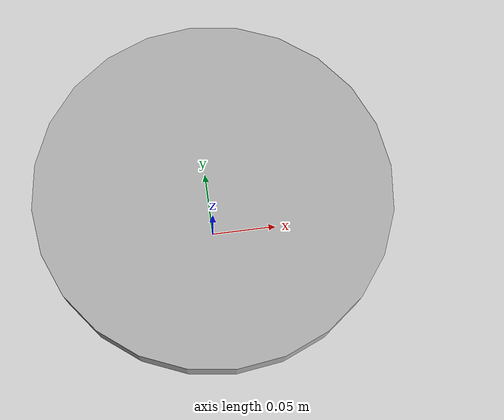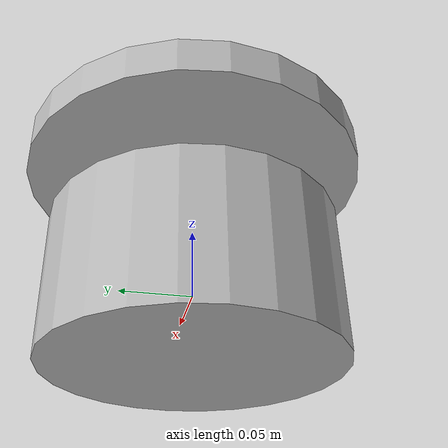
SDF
<sdf version='1.7'>
  <model name='table'>
    <joint name='fixed' type='fixed'>
      <pose relative_to='__model__'>0 0 0 0 -0 0</pose>
      <parent>world</parent>
      <child>motor_link</child>
    </joint>
    <link name='motor_link'>
      <pose relative_to='fixed'>0 0 0 0 -0 0</pose>
      <inertial>
        <pose>0 0 0 0 -0 0</pose>
        <mass>1</mass>
        <inertia>
          <ixx>1</ixx>
          <ixy>0</ixy>
          <ixz>0</ixz>
          <iyy>1</iyy>
          <iyz>0</iyz>
          <izz>1</izz>
        </inertia>
      </inertial>
      <collision name='motor_link_collision'>
        <pose>0 0 0 0 -0 0</pose>
        <geometry>
          <cylinder>
            <length>0.1</length>
            <radius>0.1</radius>
          </cylinder>
        </geometry>
      </collision>
      <visual name='motor_link_visual'>
        <pose>0 0 0 0 -0 0</pose>
        <geometry>
          <cylinder>
            <length>0.1</length>
            <radius>0.1</radius>
          </cylinder>
        </geometry>
      </visual>
    </link>
    <joint name='joint1' type='revolute'>
      <pose relative_to='motor_link'>0 0 0.1 0 -0 0</pose>
      <parent>motor_link</parent>
      <child>table_link</child>
      <axis>
        <xyz>0 0 1</xyz>
        <limit>
          <lower>-1e+16</lower>
          <upper>1e+16</upper>
        </limit>
        <dynamics>
          <spring_reference>0</spring_reference>
          <spring_stiffness>0</spring_stiffness>
        </dynamics>
      </axis>
    </joint>
    <link name='table_link'>
      <pose relative_to='joint1'>0 0 0 0 -0 0</pose>
      <inertial>
        <pose>0 0 0 0 -0 0</pose>
        <mass>1</mass>
        <inertia>
          <ixx>4.13041e-05</ixx>
          <ixy>0</ixy>
          <ixz>0</ixz>
          <iyy>4.13041e-05</iyy>
          <iyz>0</iyz>
          <izz>8.14301e-05</izz>
        </inertia>
      </inertial>
      <collision name='table_link_collision'>
        <pose>0 0 0 0 -0 0</pose>
        <geometry>
          <cylinder>
            <length>0.025</length>
            <radius>0.12</radius>
          </cylinder>
        </geometry>
      </collision>
      <visual name='table_link_visual'>
        <pose>0 0 0 0 -0 0</pose>
        <geometry>
          <cylinder>
            <length>0.025</length>
            <radius>0.12</radius>
          </cylinder>
        </geometry>
      </visual>
    </link>
    <static>0</static>
    <plugin name='gazebo_ros_control' filename='libgazebo_ros_control.so'>
      <robotNamespace>/table</robotNamespace>
    </plugin>
  </model>
</sdf>
